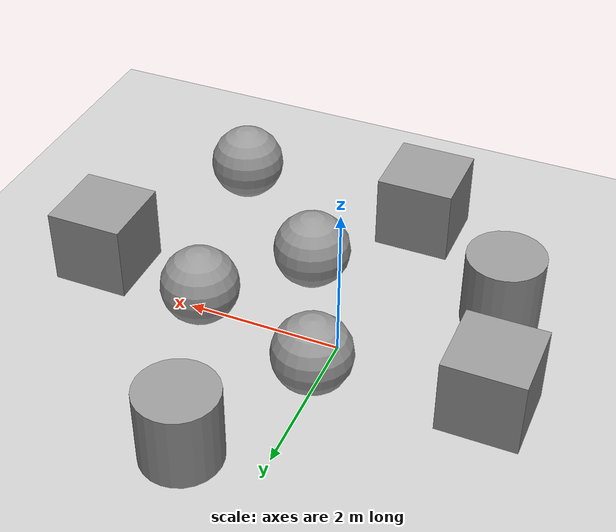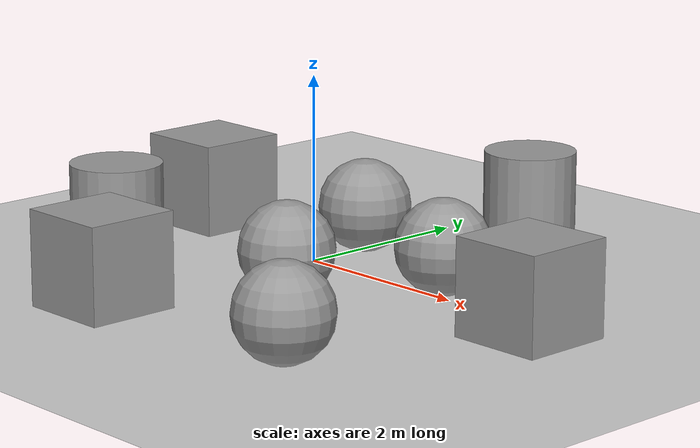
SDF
<sdf version="1.6">
 <world name="default">
  <light name="sun" type="directional">
   <pose>0 0 10 0 -0 0</pose>
   <diffuse>0.8 0.8 0.8 1</diffuse>
   <specular>0.2 0.2 0.2 1</specular>
   <attenuation>
    <range>1000</range>
    <constant>0.9</constant>
    <linear>0.01</linear>
    <quadratic>0.001</quadratic>
   </attenuation>
   <direction>-0.5 0.1 -0.9</direction>
  </light>
  <model name="ground_plane">
   <static>1</static>
   <link name="link">
    <collision name="collision">
     <geometry><plane><normal>0 0 1</normal><size>100 100</size></plane></geometry>
     <surface><friction><ode><mu>100</mu><mu2>50</mu2></ode></friction></surface>
    </collision>
    <visual name="visual">
     <cast_shadows>0</cast_shadows>
     <geometry><plane><normal>0 0 1</normal><size>100 100</size></plane></geometry>
     <material>
      <script><uri>file://media/materials/scripts/gazebo.material</uri><name>Gazebo/Grey</name></script>
     </material>
    </visual>
   </link>
  </model>
  <gravity>0 0 -9.8</gravity>
  <magnetic_field>6e-06 2.3e-05 -4.2e-05</magnetic_field>
  <atmosphere type="adiabatic"/>
  <physics name="default_physics" default="0" type="ode">
   <max_step_size>0.001</max_step_size>
   <real_time_factor>1</real_time_factor>
   <real_time_update_rate>1000</real_time_update_rate>
  </physics>
  <scene><ambient>0.4 0.4 0.4 1</ambient><background>0.7 0.7 0.7 1</background><shadows>1</shadows></scene>
  <spherical_coordinates>
   <surface_model>EARTH_WGS84</surface_model>
   <latitude_deg>0</latitude_deg>
   <longitude_deg>0</longitude_deg>
   <elevation>0</elevation>
   <heading_deg>0</heading_deg>
  </spherical_coordinates>
  <model name="unit_box">
   <pose>-2.00382 0.324132 0.499995 0 1e-05 0</pose>
   <link name="link">
    <inertial>
     <mass>1</mass>
     <inertia>
      <ixx>0.166667</ixx>
      <ixy>0</ixy>
      <ixz>0</ixz>
      <iyy>0.166667</iyy>
      <iyz>0</iyz>
      <izz>0.166667</izz>
     </inertia>
    </inertial>
    <collision name="collision"><geometry><box><size>1 1 1</size></box></geometry></collision>
    <visual name="visual">
     <geometry><box><size>1 1 1</size></box></geometry>
     <material>
      <script><name>Gazebo/Grey</name><uri>file://media/materials/scripts/gazebo.material</uri></script>
     </material>
    </visual>
   </link>
   <plugin name="animator" filename="libgazebo_tochanek_animator.so">
    <update_rate>100</update_rate>
    <cv>
     <point><x>0.0</x><y>5.0</y><z>0.5</z></point>
     <point><x>1.0</x><y>-1.0</y><z>0.5</z></point>
     <point><x>0.0</x><y>2.0</y><z>0.5</z></point>
    </cv>
    <total_time>10.0</total_time>
   </plugin>
  </model>
  <model name="unit_sphere">
   <pose>1.80117 0.11072 0.5 0 -0 0</pose>
   <link name="link">
    <inertial>
     <mass>1</mass>
     <inertia><ixx>0.1</ixx><ixy>0</ixy><ixz>0</ixz><iyy>0.1</iyy><iyz>0</iyz><izz>0.1</izz></inertia>
    </inertial>
    <collision name="collision"><geometry><sphere><radius>0.5</radius></sphere></geometry></collision>
    <visual name="visual">
     <geometry><sphere><radius>0.5</radius></sphere></geometry>
     <material>
      <script><name>Gazebo/Grey</name><uri>file://media/materials/scripts/gazebo.material</uri></script>
     </material>
    </visual>
   </link>
  </model>
  <model name="unit_sphere_0">
   <pose>0.042223 0.703931 0.5 0 -0 0</pose>
   <link name="link">
    <inertial>
     <mass>1</mass>
     <inertia><ixx>0.1</ixx><ixy>0</ixy><ixz>0</ixz><iyy>0.1</iyy><iyz>0</iyz><izz>0.1</izz></inertia>
    </inertial>
    <collision name="collision"><geometry><sphere><radius>0.5</radius></sphere></geometry></collision>
    <visual name="visual">
     <geometry><sphere><radius>0.5</radius></sphere></geometry>
     <material>
      <script><name>Gazebo/Grey</name><uri>file://media/materials/scripts/gazebo.material</uri></script>
     </material>
    </visual>
   </link>
  </model>
  <model name="unit_box_0">
   <pose>-0.176012 -2.67488 0.499995 -1e-05 -0 -0</pose>
   <link name="link">
    <inertial>
     <mass>1</mass>
     <inertia>
      <ixx>0.166667</ixx>
      <ixy>0</ixy>
      <ixz>0</ixz>
      <iyy>0.166667</iyy>
      <iyz>0</iyz>
      <izz>0.166667</izz>
     </inertia>
    </inertial>
    <collision name="collision"><geometry><box><size>1 1 1</size></box></geometry></collision>
    <visual name="visual">
     <geometry><box><size>1 1 1</size></box></geometry>
     <material>
      <script><name>Gazebo/Grey</name><uri>file://media/materials/scripts/gazebo.material</uri></script>
     </material>
    </visual>
   </link>
  </model>
  <model name="unit_sphere_1">
   <pose>2.41177 -2.58758 0.5 0 -0 0</pose>
   <link name="link">
    <inertial>
     <mass>1</mass>
     <inertia><ixx>0.1</ixx><ixy>0</ixy><ixz>0</ixz><iyy>0.1</iyy><iyz>0</iyz><izz>0.1</izz></inertia>
    </inertial>
    <collision name="collision"><geometry><sphere><radius>0.5</radius></sphere></geometry></collision>
    <visual name="visual">
     <geometry><sphere><radius>0.5</radius></sphere></geometry>
     <material>
      <script><name>Gazebo/Grey</name><uri>file://media/materials/scripts/gazebo.material</uri></script>
     </material>
    </visual>
   </link>
  </model>
  <model name="unit_box_1">
   <pose>3.38738 -0.324692 0.499995 -1e-05 -0 -0</pose>
   <link name="link">
    <inertial>
     <mass>1</mass>
     <inertia>
      <ixx>0.166667</ixx>
      <ixy>0</ixy>
      <ixz>0</ixz>
      <iyy>0.166667</iyy>
      <iyz>0</iyz>
      <izz>0.166667</izz>
     </inertia>
    </inertial>
    <collision name="collision"><geometry><box><size>1 1 1</size></box></geometry></collision>
    <visual name="visual">
     <geometry><box><size>1 1 1</size></box></geometry>
     <material>
      <script><name>Gazebo/Grey</name><uri>file://media/materials/scripts/gazebo.material</uri></script>
     </material>
    </visual>
   </link>
  </model>
  <model name="unit_sphere_2">
   <pose>0.803747 -1.1032 0.5 0 -0 0</pose>
   <link name="link">
    <inertial>
     <mass>1</mass>
     <inertia><ixx>0.1</ixx><ixy>0</ixy><ixz>0</ixz><iyy>0.1</iyy><iyz>0</iyz><izz>0.1</izz></inertia>
    </inertial>
    <collision name="collision"><geometry><sphere><radius>0.5</radius></sphere></geometry></collision>
    <visual name="visual">
     <geometry><sphere><radius>0.5</radius></sphere></geometry>
     <material>
      <script><name>Gazebo/Grey</name><uri>file://media/materials/scripts/gazebo.material</uri></script>
     </material>
    </visual>
   </link>
  </model>
  <model name="unit_cylinder">
   <pose>0.947056 2.30997 0.499997 3e-06 4e-06 -0</pose>
   <link name="link">
    <inertial>
     <mass>1</mass>
     <inertia><ixx>0.145833</ixx><ixy>0</ixy><ixz>0</ixz><iyy>0.145833</iyy><iyz>0</iyz><izz>0.125</izz></inertia>
    </inertial>
    <collision name="collision">
     <geometry><cylinder><radius>0.5</radius><length>1</length></cylinder></geometry>
    </collision>
    <visual name="visual">
     <geometry><cylinder><radius>0.5</radius><length>1</length></cylinder></geometry>
     <material>
      <script><name>Gazebo/Grey</name><uri>file://media/materials/scripts/gazebo.material</uri></script>
     </material>
    </visual>
   </link>
  </model>
  <model name="unit_cylinder_0">
   <pose>-1.65947 -1.32127 0.499997 3e-06 4e-06 -0</pose>
   <link name="link">
    <inertial>
     <mass>1</mass>
     <inertia><ixx>0.145833</ixx><ixy>0</ixy><ixz>0</ixz><iyy>0.145833</iyy><iyz>0</iyz><izz>0.125</izz></inertia>
    </inertial>
    <collision name="collision">
     <geometry><cylinder><radius>0.5</radius><length>1</length></cylinder></geometry>
    </collision>
    <visual name="visual">
     <geometry><cylinder><radius>0.5</radius><length>1</length></cylinder></geometry>
     <material>
      <script><name>Gazebo/Grey</name><uri>file://media/materials/scripts/gazebo.material</uri></script>
     </material>
    </visual>
   </link>
  </model>
  <plugin name="collision" filename="libgazebo_dds_model_state.so"><update_rate>100</update_rate></plugin>
 </world>
</sdf>
